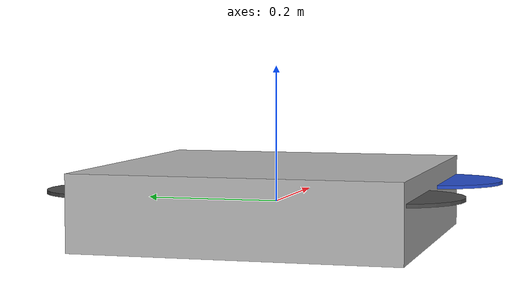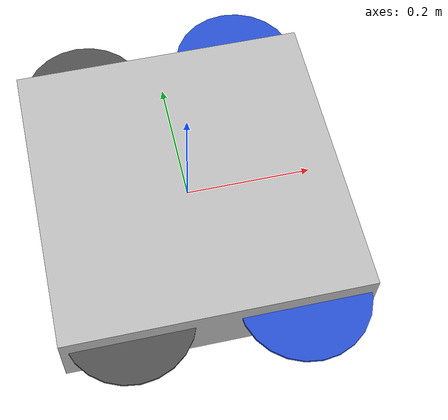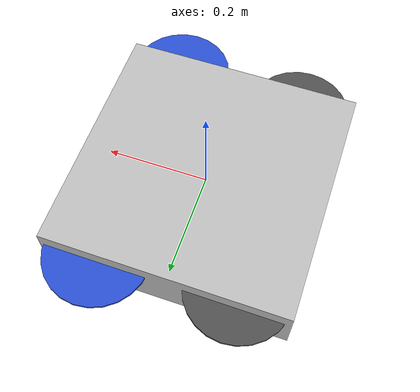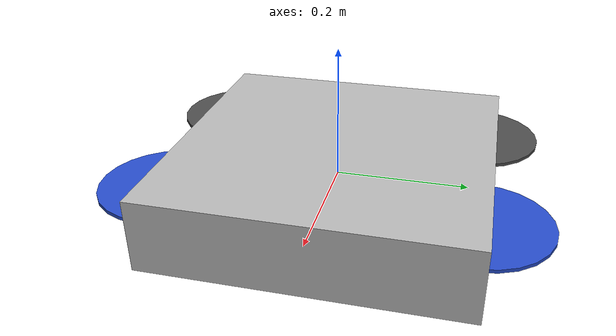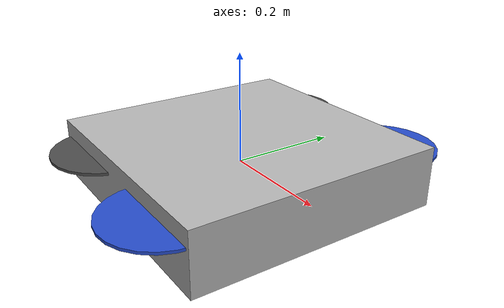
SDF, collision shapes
<sdf version='1.6'>
  <model name='iris_avoidance_benchmarking'>
    <include>
      <uri>model://iris</uri>
    </include>

    <!-- Only difference to regular iris is this sensor and a MAVLink stream -->
    <link name="bumper_link">
      <inertial>
        <pose>0.01 0.025 0.025 0 0 0</pose>
        <mass>0.01</mass>
        <inertia>
          <ixx>4.15e-6</ixx>
          <ixy>0</ixy>
          <ixz>0</ixz>
          <iyy>2.407e-6</iyy>
          <iyz>0</iyz>
          <izz>2.407e-6</izz>
        </inertia>
      </inertial>

      <collision name='bumper_collision'>
          <pose>0 0 0 0 -0 0</pose>
          <geometry>
            <box>
              <size>0.47 0.47 0.11</size>
            </box>
          </geometry>
      </collision>

      <sensor name="bumper_sensor" type="contact">
        <always_on>true</always_on>
        <update_rate>30.0</update_rate>
        <contact>
          <collision>bumper_collision</collision>
        </contact>
        <plugin name="benchmarking_bumper" filename="libgazebo_ros_bumper.so">
          <bumperTopicName>benchmarker/collision</bumperTopicName>
        </plugin>
      </sensor>
    </link>

    <joint name="bumper_joint" type="revolute">
      <child>bumper_link</child>
      <parent>iris::base_link</parent>
      <axis>
        <xyz>0 0 1</xyz>
        <limit>
          <upper>0</upper>
          <lower>0</lower>
        </limit>
      </axis>
    </joint>

</model>
</sdf>

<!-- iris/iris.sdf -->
<sdf version='1.5'>
  <model name='iris'>
    <link name='base_link'>
      <pose>0 0 0 0 -0 0</pose>
      <inertial>
        <pose>0 0 0 0 -0 0</pose>
        <mass>1.5</mass>
        <inertia>
          <ixx>0.0347563</ixx>
          <ixy>0</ixy>
          <ixz>0</ixz>
          <iyy>0.0458929</iyy>
          <iyz>0</iyz>
          <izz>0.0977</izz>
        </inertia>
      </inertial>
      <collision name='base_link_collision'>
        <pose>0 0 0 0 -0 0</pose>
        <geometry>
          <box>
            <size>0.47 0.47 0.11</size>
          </box>
        </geometry>
        <surface>
          <contact>
            <ode/>
          </contact>
          <friction>
            <ode/>
          </friction>
        </surface>
      </collision>
      <visual name='base_link_visual'>
        <pose>0 0 0 0 -0 0</pose>
        <geometry>
          <mesh>
            <scale>1 1 1</scale>
            <uri>model://rotors_description/meshes/iris.dae</uri>
          </mesh>
        </geometry>
        <material>
          <script>
            <name>Gazebo/DarkGrey</name>
            <uri>__default__</uri>
          </script>
        </material>
      </visual>
      <gravity>1</gravity>
      <velocity_decay/>
      <self_collide>0</self_collide>
    </link>
    <link name='iris/imu_link'>
      <pose>0 0 0 0 -0 0</pose>
      <inertial>
        <pose>0 0 0 0 -0 0</pose>
        <mass>0.015</mass>
        <inertia>
          <ixx>1e-05</ixx>
          <ixy>0</ixy>
          <ixz>0</ixz>
          <iyy>1e-05</iyy>
          <iyz>0</iyz>
          <izz>1e-05</izz>
        </inertia>
      </inertial>
    </link>
    <joint name='iris/imu_joint' type='revolute'>
      <child>iris/imu_link</child>
      <parent>base_link</parent>
      <axis>
        <xyz>1 0 0</xyz>
        <limit>
          <lower>0</lower>
          <upper>0</upper>
          <effort>0</effort>
          <velocity>0</velocity>
        </limit>
        <dynamics>
          <spring_reference>0</spring_reference>
          <spring_stiffness>0</spring_stiffness>
        </dynamics>
        <use_parent_model_frame>1</use_parent_model_frame>
      </axis>
    </joint>
    <link name='rotor_0'>
      <pose>0.13 -0.22 0.023 0 -0 0</pose>
      <inertial>
        <pose>0 0 0 0 -0 0</pose>
        <mass>0.005</mass>
        <inertia>
          <ixx>9.75e-07</ixx>
          <ixy>0</ixy>
          <ixz>0</ixz>
          <iyy>0.000166704</iyy>
          <iyz>0</iyz>
          <izz>0.000167604</izz>
        </inertia>
      </inertial>
      <collision name='rotor_0_collision'>
        <pose>0 0 0 0 -0 0</pose>
        <geometry>
          <cylinder>
            <length>0.005</length>
            <radius>0.1</radius>
          </cylinder>
        </geometry>
        <surface>
          <contact>
            <ode/>
          </contact>
          <friction>
            <ode/>
          </friction>
        </surface>
      </collision>
      <visual name='rotor_0_visual'>
        <pose>0 0 0 0 -0 0</pose>
        <geometry>
          <mesh>
            <scale>1 1 1</scale>
            <uri>model://rotors_description/meshes/iris_prop_ccw.dae</uri>
          </mesh>
        </geometry>
        <material>
          <script>
            <name>Gazebo/Blue</name>
            <uri>__default__</uri>
          </script>
        </material>
      </visual>
      <gravity>1</gravity>
      <velocity_decay/>
      <self_collide>0</self_collide>
    </link>
    <joint name='rotor_0_joint' type='revolute'>
      <child>rotor_0</child>
      <parent>base_link</parent>
      <axis>
        <xyz>0 0 1</xyz>
        <limit>
          <lower>-1e+16</lower>
          <upper>1e+16</upper>
        </limit>
        <dynamics>
          <spring_reference>0</spring_reference>
          <spring_stiffness>0</spring_stiffness>
        </dynamics>
        <use_parent_model_frame>1</use_parent_model_frame>
      </axis>
    </joint>
    <link name='rotor_1'>
      <pose>-0.13 0.2 0.023 0 -0 0</pose>
      <inertial>
        <pose>0 0 0 0 -0 0</pose>
        <mass>0.005</mass>
        <inertia>
          <ixx>9.75e-07</ixx>
          <ixy>0</ixy>
          <ixz>0</ixz>
          <iyy>0.000166704</iyy>
          <iyz>0</iyz>
          <izz>0.000167604</izz>
        </inertia>
      </inertial>
      <collision name='rotor_1_collision'>
        <pose>0 0 0 0 -0 0</pose>
        <geometry>
          <cylinder>
            <length>0.005</length>
            <radius>0.1</radius>
          </cylinder>
        </geometry>
        <surface>
          <contact>
            <ode/>
          </contact>
          <friction>
            <ode/>
          </friction>
        </surface>
      </collision>
      <visual name='rotor_1_visual'>
        <pose>0 0 0 0 -0 0</pose>
        <geometry>
          <mesh>
            <scale>1 1 1</scale>
            <uri>model://rotors_description/meshes/iris_prop_ccw.dae</uri>
          </mesh>
        </geometry>
        <material>
          <script>
            <name>Gazebo/DarkGrey</name>
            <uri>__default__</uri>
          </script>
        </material>
      </visual>
      <gravity>1</gravity>
      <velocity_decay/>
      <self_collide>0</self_collide>
    </link>
    <joint name='rotor_1_joint' type='revolute'>
      <child>rotor_1</child>
      <parent>base_link</parent>
      <axis>
        <xyz>0 0 1</xyz>
        <limit>
          <lower>-1e+16</lower>
          <upper>1e+16</upper>
        </limit>
        <dynamics>
          <spring_reference>0</spring_reference>
          <spring_stiffness>0</spring_stiffness>
        </dynamics>
        <use_parent_model_frame>1</use_parent_model_frame>
      </axis>
    </joint>
    <link name='rotor_2'>
      <pose>0.13 0.22 0.023 0 -0 0</pose>
      <inertial>
        <pose>0 0 0 0 -0 0</pose>
        <mass>0.005</mass>
        <inertia>
          <ixx>9.75e-07</ixx>
          <ixy>0</ixy>
          <ixz>0</ixz>
          <iyy>0.000166704</iyy>
          <iyz>0</iyz>
          <izz>0.000167604</izz>
        </inertia>
      </inertial>
      <collision name='rotor_2_collision'>
        <pose>0 0 0 0 -0 0</pose>
        <geometry>
          <cylinder>
            <length>0.005</length>
            <radius>0.1</radius>
          </cylinder>
        </geometry>
        <surface>
          <contact>
            <ode/>
          </contact>
          <friction>
            <ode/>
          </friction>
        </surface>
      </collision>
      <visual name='rotor_2_visual'>
        <pose>0 0 0 0 -0 0</pose>
        <geometry>
          <mesh>
            <scale>1 1 1</scale>
            <uri>model://rotors_description/meshes/iris_prop_cw.dae</uri>
          </mesh>
        </geometry>
        <material>
          <script>
            <name>Gazebo/Blue</name>
            <uri>__default__</uri>
          </script>
        </material>
      </visual>
      <gravity>1</gravity>
      <velocity_decay/>
      <self_collide>0</self_collide>
    </link>
    <joint name='rotor_2_joint' type='revolute'>
      <child>rotor_2</child>
      <parent>base_link</parent>
      <axis>
        <xyz>0 0 1</xyz>
        <limit>
          <lower>-1e+16</lower>
          <upper>1e+16</upper>
        </limit>
        <dynamics>
          <spring_reference>0</spring_reference>
          <spring_stiffness>0</spring_stiffness>
        </dynamics>
        <use_parent_model_frame>1</use_parent_model_frame>
      </axis>
    </joint>
    <link name='rotor_3'>
      <pose>-0.13 -0.2 0.023 0 -0 0</pose>
      <inertial>
        <pose>0 0 0 0 -0 0</pose>
        <mass>0.005</mass>
        <inertia>
          <ixx>9.75e-07</ixx>
          <ixy>0</ixy>
          <ixz>0</ixz>
          <iyy>0.000166704</iyy>
          <iyz>0</iyz>
          <izz>0.000167604</izz>
        </inertia>
      </inertial>
      <collision name='rotor_3_collision'>
        <pose>0 0 0 0 -0 0</pose>
        <geometry>
          <cylinder>
            <length>0.005</length>
            <radius>0.1</radius>
          </cylinder>
        </geometry>
        <surface>
          <contact>
            <ode/>
          </contact>
          <friction>
            <ode/>
          </friction>
        </surface>
      </collision>
      <visual name='rotor_3_visual'>
        <pose>0 0 0 0 -0 0</pose>
        <geometry>
          <mesh>
            <scale>1 1 1</scale>
            <uri>model://rotors_description/meshes/iris_prop_cw.dae</uri>
          </mesh>
        </geometry>
        <material>
          <script>
            <name>Gazebo/DarkGrey</name>
            <uri>__default__</uri>
          </script>
        </material>
      </visual>
      <gravity>1</gravity>
      <velocity_decay/>
      <self_collide>0</self_collide>
    </link>
    <joint name='rotor_3_joint' type='revolute'>
      <child>rotor_3</child>
      <parent>base_link</parent>
      <axis>
        <xyz>0 0 1</xyz>
        <limit>
          <lower>-1e+16</lower>
          <upper>1e+16</upper>
        </limit>
        <dynamics>
          <spring_reference>0</spring_reference>
          <spring_stiffness>0</spring_stiffness>
        </dynamics>
        <use_parent_model_frame>1</use_parent_model_frame>
      </axis>
    </joint>
    <plugin name='rosbag' filename='librotors_gazebo_multirotor_base_plugin.so'>
      <linkName>base_link</linkName>
      <motorPubTopic>~/motors</motorPubTopic>
      <rotorVelocitySlowdownSim>10</rotorVelocitySlowdownSim>
    </plugin>
    <plugin name='front_right_motor_model' filename='librotors_gazebo_motor_model.so'>
      <jointName>rotor_0_joint</jointName>
      <linkName>rotor_0</linkName>
      <turningDirection>ccw</turningDirection>
      <timeConstantUp>0.0125</timeConstantUp>
      <timeConstantDown>0.025</timeConstantDown>
      <maxRotVelocity>838</maxRotVelocity>
      <motorConstant>8.54858e-06</motorConstant>
      <momentConstant>0.16</momentConstant>
      <motorNumber>0</motorNumber>
      <rotorDragCoefficient>8.06428e-05</rotorDragCoefficient>
      <rollingMomentCoefficient>1e-06</rollingMomentCoefficient>
      <commandSubTopic>~/command/motor_speed</commandSubTopic>
      <motorSpeedPubTopic>~/motor_speed/0</motorSpeedPubTopic>
      <rotorVelocitySlowdownSim>10</rotorVelocitySlowdownSim>
    </plugin>
    <plugin name='back_left_motor_model' filename='librotors_gazebo_motor_model.so'>
      <jointName>rotor_1_joint</jointName>
      <linkName>rotor_1</linkName>
      <turningDirection>ccw</turningDirection>
      <timeConstantUp>0.0125</timeConstantUp>
      <timeConstantDown>0.025</timeConstantDown>
      <maxRotVelocity>838</maxRotVelocity>
      <motorConstant>8.54858e-06</motorConstant>
      <momentConstant>0.16</momentConstant>
      <motorNumber>1</motorNumber>
      <rotorDragCoefficient>8.06428e-05</rotorDragCoefficient>
      <rollingMomentCoefficient>1e-06</rollingMomentCoefficient>
      <commandSubTopic>~/command/motor_speed</commandSubTopic>
      <motorSpeedPubTopic>~/motor_speed/1</motorSpeedPubTopic>
      <rotorVelocitySlowdownSim>10</rotorVelocitySlowdownSim>
    </plugin>
    <plugin name='front_left_motor_model' filename='librotors_gazebo_motor_model.so'>
      <jointName>rotor_2_joint</jointName>
      <linkName>rotor_2</linkName>
      <turningDirection>cw</turningDirection>
      <timeConstantUp>0.0125</timeConstantUp>
      <timeConstantDown>0.025</timeConstantDown>
      <maxRotVelocity>838</maxRotVelocity>
      <motorConstant>8.54858e-06</motorConstant>
      <momentConstant>0.16</momentConstant>
      <motorNumber>2</motorNumber>
      <rotorDragCoefficient>8.06428e-05</rotorDragCoefficient>
      <rollingMomentCoefficient>1e-06</rollingMomentCoefficient>
      <commandSubTopic>~/command/motor_speed</commandSubTopic>
      <motorSpeedPubTopic>~/motor_speed/2</motorSpeedPubTopic>
      <rotorVelocitySlowdownSim>10</rotorVelocitySlowdownSim>
    </plugin>
    <plugin name='back_right_motor_model' filename='librotors_gazebo_motor_model.so'>
      <jointName>rotor_3_joint</jointName>
      <linkName>rotor_3</linkName>
      <turningDirection>cw</turningDirection>
      <timeConstantUp>0.0125</timeConstantUp>
      <timeConstantDown>0.025</timeConstantDown>
      <maxRotVelocity>838</maxRotVelocity>
      <motorConstant>8.54858e-06</motorConstant>
      <momentConstant>0.16</momentConstant>
      <motorNumber>3</motorNumber>
      <rotorDragCoefficient>8.06428e-05</rotorDragCoefficient>
      <rollingMomentCoefficient>1e-06</rollingMomentCoefficient>
      <commandSubTopic>~/command/motor_speed</commandSubTopic>
      <motorSpeedPubTopic>~/motor_speed/3</motorSpeedPubTopic>
      <rotorVelocitySlowdownSim>10</rotorVelocitySlowdownSim>
    </plugin>
    <plugin name='mavlink_interface' filename='librotors_gazebo_mavlink_interface.so'>
      <imuSubTopic>~/imu</imuSubTopic>
      <motorSpeedCommandPubTopic>~/command/motor_speed</motorSpeedCommandPubTopic>
      <udpPort>14560</udpPort>
      <udpPort2>14556</udpPort2>
      <portStep>10</portStep>
    </plugin>
    <static>0</static>
    <plugin name='rotors_gazebo_imu_plugin' filename='librotors_gazebo_imu_plugin.so'>
      <linkName>iris/imu_link</linkName>
      <imuTopic>~/imu</imuTopic>
      <gyroscopeNoiseDensity>0.0003394</gyroscopeNoiseDensity>
      <gyroscopeRandomWalk>3.8785e-05</gyroscopeRandomWalk>
      <gyroscopeBiasCorrelationTime>1000.0</gyroscopeBiasCorrelationTime>
      <gyroscopeTurnOnBiasSigma>0.0087</gyroscopeTurnOnBiasSigma>
      <accelerometerNoiseDensity>0.004</accelerometerNoiseDensity>
      <accelerometerRandomWalk>0.006</accelerometerRandomWalk>
      <accelerometerBiasCorrelationTime>300.0</accelerometerBiasCorrelationTime>
      <accelerometerTurnOnBiasSigma>0.196</accelerometerTurnOnBiasSigma>
    </plugin>
  </model>
</sdf>
